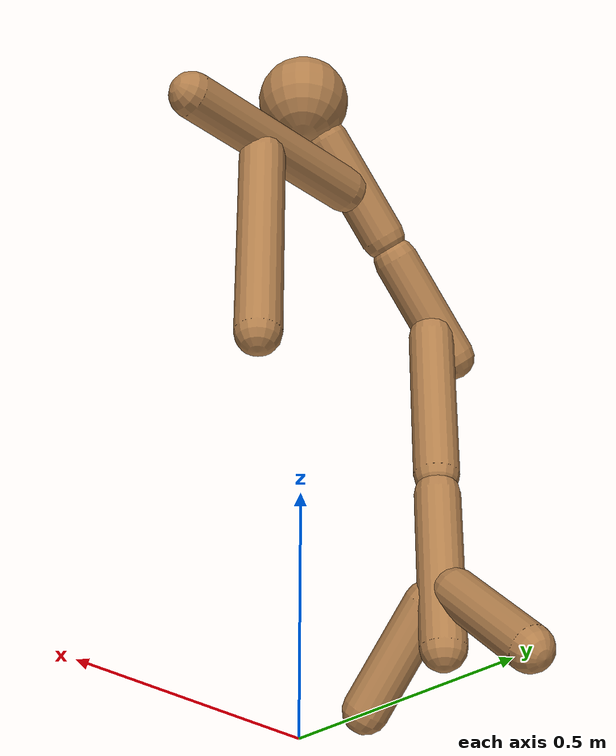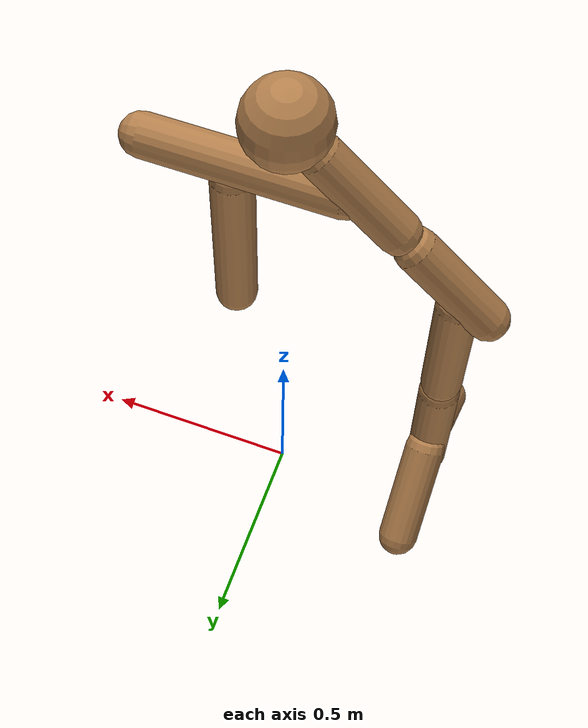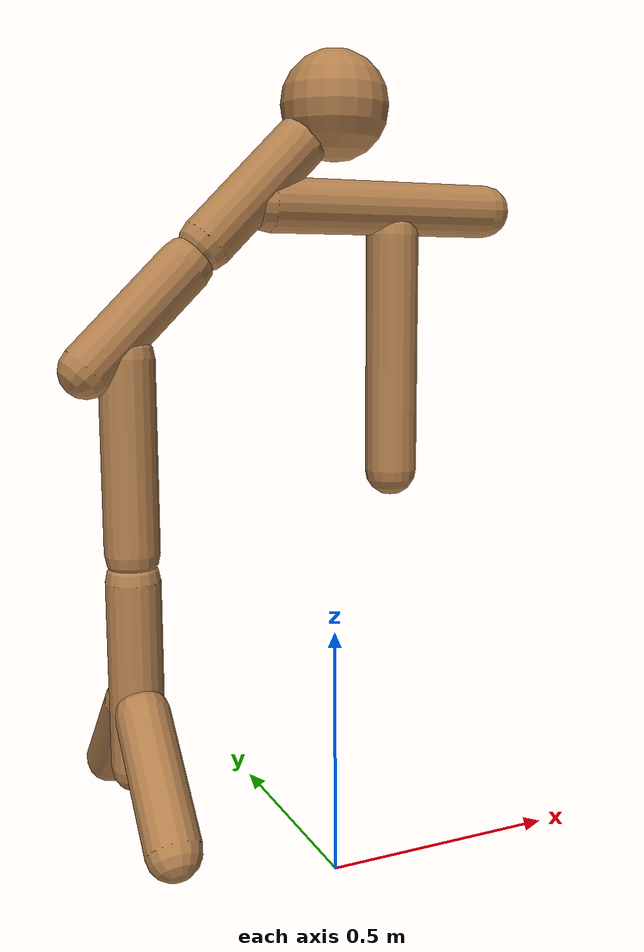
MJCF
<?xml version='1.0' encoding='UTF-8'?>
<!-- Universal Animal Template: unimal -->
<mujoco model="unimal">
  <compiler angle="degree"/>
  <size njmax="2000" nconmax="500"/>
  <option timestep=".005">
    <flag filterparent="disable"/>
  </option>
  <!-- Common defaults to make search space tractable -->
  <default>
    <!-- Define motor defaults -->
    <motor ctrlrange="-1 1" ctrllimited="true"/>
    <!-- Define joint defaults -->
    <default class="normal_joint">
      <joint type="hinge" damping="1" stiffness="1" armature="1" limited="true" range="-120 120" solimplimit="0 0.99 0.01"/>
    </default>
    <default class="walker_joint">
      <joint type="hinge" damping="0.2" stiffness="1" armature=".01" limited="true" range="-120 120" solimplimit="0 0.99 0.01"/>
    </default>
    <default class="stiff_joint">
      <joint type="hinge" damping="5" stiffness="10" armature=".01" limited="true" solimplimit="0 0.99 0.01"/>
    </default>
    <default class="free">
      <joint limited="false" damping="0" armature="0" stiffness="0"/>
    </default>
    <default class="growth_site">
      <site size="1e-6 1e-6 1e-6"/>
    </default>
    <default class="torso_growth_site">
      <site size="1e-6 1e-6 1e-6"/>
    </default>
    <default class="mirror_growth_site">
      <site size="1e-6 1e-6 1e-6"/>
    </default>
    <default class="btm_pos_site">
      <site size="1e-6 1e-6 1e-6"/>
    </default>
    <default class="box_face_site">
      <site size="1e-6 1e-6 1e-6"/>
    </default>
    <default class="imu_vel">
      <site type="box" size="0.05" rgba="1 0 0 0"/>
    </default>
    <default class="touch_site">
      <site group="3" rgba="0 0 1 .3"/>
    </default>
    <default class="food_site">
      <site material="food" size="0.15"/>
    </default>
    <!-- Define geom defaults -->
    <geom type="capsule" condim="3" friction="0.7 0.1 0.1" material="self"/>
  </default>
  <worldbody>
    <light diffuse="1 1 1" directional="true" exponent="1" pos="0 0 8" specular="0.1 0.1 0.1" dir="0 0 -1"/>
    <!-- Programatically generated xml goes here -->
    <body name="torso/0" pos="0 0 1.5">
      <joint name="root" type="free" class="free"/>
      <site name="root" class="imu_vel"/>
      <geom name="torso/0" type="sphere" size="0.1" condim="3" density="800"/>
      <camera name="side" pos="0 -7 2" xyaxes="1 0 0 0 1 2" mode="trackcom"/>
      <site name="torso/0" class="growth_site" pos="0 0 0"/>
      <site name="torso/btm_pos/0" class="btm_pos_site" pos="0 0 -0.1"/>
      <site name="torso/touch/0" class="touch_site" size="0.11"/>
      <site name="torso/horizontal_y/0" class="torso_growth_site" pos="-0.1 0 0"/>
      <body name="limb/0" pos="-0.07 0.0 -0.07">
        <joint name="limbx/0" type="hinge" class="normal_joint" range="-45 45" pos="0.04 0.0 0.04" axis="0.7071 0.0 -0.7071"/>
        <joint name="limby/0" type="hinge" class="normal_joint" range="-30 30" pos="0.04 0.0 0.04" axis="0.0 1.0 0.0"/>
        <geom name="limb/0" type="capsule" fromto="0.0 0.0 0.0 -0.18 0.0 -0.18" size="0.05" density="500"/>
        <site name="limb/mid/0" class="growth_site" pos="-0.11 0.0 -0.11"/>
        <site name="limb/btm/0" class="growth_site" pos="-0.18 0.0 -0.18"/>
        <site name="limb/btm_pos/0" class="btm_pos_site" pos="-0.18 0.0 -0.18"/>
        <site name="limb/touch/0" class="touch_site" size="0.060000000000000005" fromto="0.0 0.0 0.0 -0.18 0.0 -0.18" type="capsule"/>
        <body name="limb/14" pos="-0.22 0.0 -0.22">
          <joint name="limbx/14" type="hinge" class="normal_joint" range="0 90" pos="0.04 0.0 0.04" axis="0.7071 0.0 -0.7071"/>
          <geom name="limb/14" type="capsule" fromto="0.0 0.0 0.0 -0.18 0.0 -0.18" size="0.05" density="500"/>
          <site name="limb/mid/14" class="growth_site" pos="-0.11 0.0 -0.11"/>
          <site name="limb/btm/14" class="growth_site" pos="-0.18 0.0 -0.18"/>
          <site name="limb/btm_pos/14" class="btm_pos_site" pos="-0.18 0.0 -0.18"/>
          <site name="limb/touch/14" class="touch_site" size="0.060000000000000005" fromto="0.0 0.0 0.0 -0.18 0.0 -0.18" type="capsule"/>
          <body name="limb/25" pos="-0.11 0.0 -0.16">
            <joint name="limby/25" type="hinge" class="normal_joint" range="-60 60" pos="0.0 0.0 0.05" axis="0.0 1.0 0.0"/>
            <geom name="limb/25" type="capsule" fromto="0.0 0.0 0.0 0.0 0.0 -0.35" size="0.05" density="500"/>
            <site name="limb/mid/25" class="growth_site" pos="0.0 0.0 -0.2"/>
            <site name="limb/btm/25" class="growth_site" pos="0.0 0.0 -0.35"/>
            <site name="limb/btm_pos/25" class="btm_pos_site" pos="0.0 0.0 -0.4"/>
            <site name="limb/touch/25" class="touch_site" size="0.060000000000000005" fromto="0.0 0.0 0.0 0.0 0.0 -0.35" type="capsule"/>
            <body name="limb/28" pos="0.0 0.0 -0.39999999999999997">
              <joint name="limby/28" type="hinge" class="normal_joint" range="-45 0" pos="0.0 0.0 0.05" axis="0.0 1.0 0.0"/>
              <geom name="limb/28" type="capsule" fromto="0.0 0.0 0.0 0.0 0.0 -0.35" size="0.05" density="500"/>
              <site name="limb/mid/28" class="growth_site" pos="0.0 0.0 -0.2"/>
              <site name="limb/btm/28" class="growth_site" pos="0.0 0.0 -0.35"/>
              <site name="limb/btm_pos/28" class="btm_pos_site" pos="0.0 0.0 -0.4"/>
              <site name="limb/touch/28" class="touch_site" size="0.060000000000000005" fromto="0.0 0.0 0.0 0.0 0.0 -0.35" type="capsule"/>
              <body name="limb/30" pos="0.0 0.04 -0.24000000000000002">
                <joint name="limby/30" type="hinge" class="normal_joint" range="-30 0" pos="0.0 -0.04 0.04" axis="0.0 0.7071 0.7071"/>
                <geom name="limb/30" type="capsule" fromto="0.0 0.0 0.0 0.0 0.18 -0.18" size="0.05" density="500"/>
                <site name="limb/mid/30" class="mirror_growth_site" pos="0.0 0.11 -0.11"/>
                <site name="limb/btm/30" class="mirror_growth_site" pos="0.0 0.18 -0.18"/>
                <site name="limb/btm_pos/30" class="btm_pos_site" pos="0.0 0.21 -0.21"/>
                <site name="limb/touch/30" class="touch_site" size="0.060000000000000005" fromto="0.0 0.0 0.0 0.0 0.18 -0.18" type="capsule"/>
              </body>
              <body name="limb/31" pos="0.0 -0.04 -0.24000000000000002">
                <joint name="limby/31" type="hinge" class="normal_joint" range="-30 0" pos="0.0 0.04 0.04" axis="-0.0 0.7071 -0.7071"/>
                <geom name="limb/31" type="capsule" fromto="0.0 0.0 0.0 0.0 -0.18 -0.18" size="0.05" density="500"/>
                <site name="limb/mid/31" class="mirror_growth_site" pos="0.0 -0.11 -0.11"/>
                <site name="limb/btm/31" class="mirror_growth_site" pos="0.0 -0.18 -0.18"/>
                <site name="limb/btm_pos/31" class="btm_pos_site" pos="0.0 -0.21 -0.21"/>
                <site name="limb/touch/31" class="touch_site" size="0.060000000000000005" fromto="0.0 0.0 0.0 0.0 -0.18 -0.18" type="capsule"/>
              </body>
            </body>
          </body>
        </body>
        <body name="limb/23" pos="-0.06 0.0 -0.11">
          <joint name="limbx/23" type="hinge" class="normal_joint" range="-60 60" pos="-0.05 0.0 0.0" axis="0.0 0.0 1.0"/>
          <joint name="limby/23" type="hinge" class="normal_joint" range="-60 30" pos="-0.05 0.0 0.0" axis="-0.0 1.0 0.0"/>
          <geom name="limb/23" type="capsule" fromto="0.0 0.0 0.0 0.45 0.0 0.0" size="0.05" density="500"/>
          <site name="limb/mid/23" class="growth_site" pos="0.25 0.0 0.0"/>
          <site name="limb/btm/23" class="growth_site" pos="0.45 0.0 0.0"/>
          <site name="limb/btm_pos/23" class="btm_pos_site" pos="0.45 0.0 0.0"/>
          <site name="limb/touch/23" class="touch_site" size="0.060000000000000005" fromto="0.0 0.0 0.0 0.45 0.0 0.0" type="capsule"/>
          <body name="limb/29" pos="0.25 0.0 -0.05">
            <joint name="limby/29" type="hinge" class="normal_joint" range="-30 30" pos="0.0 0.0 0.05" axis="0.0 1.0 0.0"/>
            <geom name="limb/29" type="capsule" fromto="0.0 0.0 0.0 0.0 0.0 -0.45" size="0.05" density="500"/>
            <site name="limb/mid/29" class="growth_site" pos="0.0 0.0 -0.25"/>
            <site name="limb/btm/29" class="growth_site" pos="0.0 0.0 -0.45"/>
            <site name="limb/btm_pos/29" class="btm_pos_site" pos="0.0 0.0 -0.5"/>
            <site name="limb/touch/29" class="touch_site" size="0.060000000000000005" fromto="0.0 0.0 0.0 0.0 0.0 -0.45" type="capsule"/>
          </body>
        </body>
      </body>
    </body>
  </worldbody>
  <actuator>
    <motor joint="limbx/0" gear="150" name="limbx/0"/>
    <motor joint="limby/0" gear="250" name="limby/0"/>
    <motor joint="limbx/14" gear="150" name="limbx/14"/>
    <motor joint="limby/25" gear="300" name="limby/25"/>
    <motor joint="limby/28" gear="300" name="limby/28"/>
    <motor joint="limby/30" gear="300" name="limby/30"/>
    <motor joint="limby/31" gear="300" name="limby/31"/>
    <motor joint="limbx/23" gear="300" name="limbx/23"/>
    <motor joint="limby/23" gear="150" name="limby/23"/>
    <motor joint="limby/29" gear="150" name="limby/29"/>
  </actuator>
  <sensor>
    <accelerometer name="torso_accel" site="root"/>
    <gyro name="torso_gyro" site="root"/>
    <velocimeter name="torso_vel" site="root"/>
    <subtreeangmom name="unimal_am" body="torso/0"/>
    <touch name="torso/0" site="torso/touch/0"/>
    <touch name="limb/0" site="limb/touch/0"/>
    <touch name="limb/14" site="limb/touch/14"/>
    <touch name="limb/25" site="limb/touch/25"/>
    <touch name="limb/28" site="limb/touch/28"/>
    <touch name="limb/30" site="limb/touch/30"/>
    <touch name="limb/31" site="limb/touch/31"/>
    <touch name="limb/23" site="limb/touch/23"/>
    <touch name="limb/29" site="limb/touch/29"/>
  </sensor>
  <!-- Add hfield assets -->
  <asset/>
  <!-- List of contacts to exclude -->
  <contact>
    <exclude name="limb/30:limb/31" body1="limb/30" body2="limb/31"/>
  </contact>
  <!-- Define material, texture etc -->
  <asset>
    <material name="grid" texture="grid" texrepeat="1 1" texuniform="true" reflectance="0.1"/>
    <material name="hfield" texture="hfield" texrepeat="1 1" texuniform="true" reflectance="0.1"/>
    <material name="wall" texture="wall" texrepeat="1 1" texuniform="true" reflectance=".5"/>
    <material name="platform" texture="platform" texrepeat="1 1" texuniform="true" reflectance=".5"/>
    <material name="boundary" texture="boundary" texrepeat="1 1" texuniform="true" reflectance=".5"/>
    <material name="jump" texture="jump" texrepeat="1 1" texuniform="true" reflectance=".5"/>
    <material name="goal" rgba="1 0 0 1"/>
    <material name="food" rgba="0 0 1 1" emission="1"/>
    <material name="init_position" rgba="0 1 0 0.7"/>
    <material name="self" rgba=".7 .5 .3 1"/>
    <material name="self_invisible" rgba=".7 .5 .3 0"/>
    <material name="self_default" rgba=".7 .5 .3 1"/>
    <material name="self_highlight" rgba="0 .5 .3 1"/>
    <material name="effector" rgba=".7 .4 .2 1"/>
    <material name="effector_default" rgba=".7 .4 .2 1"/>
    <material name="effector_highlight" rgba="0 .5 .3 1"/>
    <material name="decoration" rgba=".3 .5 .7 1"/>
    <material name="eye" rgba="0 .2 1 1"/>
    <material name="target" rgba=".6 .3 .3 1"/>
    <material name="target_default" rgba=".6 .3 .3 1"/>
    <material name="target_highlight" rgba=".6 .3 .3 .4"/>
    <material name="site" rgba=".5 .5 .5 .3"/>
    <material name="ball" texture="ball"/>
  </asset>
  <asset>
    <texture name="grid" type="2d" builtin="checker" rgb1="0.4 0.4 0.4" rgb2="0.4 0.4 0.4" width="300" height="300" mark="edge" markrgb="0.2 0.2 0.2"/>
    <texture name="hfield" type="2d" builtin="checker" rgb1="0.4 0.4 0.4" rgb2="0.4 0.4 0.4" width="300" height="300" mark="edge" markrgb="0.2 0.2 0.2"/>
    <texture name="wall" type="2d" builtin="flat" rgb1="0.9 0.7 0" rgb2="0.9 0.7 0" width="300" height="300"/>
    <texture name="platform" type="2d" builtin="flat" rgb1="0.3 0 0.8" rgb2="0.3 0 0.8" width="300" height="300"/>
    <texture name="boundary" type="2d" builtin="flat" rgb1="0.3 0.3 0.3" rgb2="0.3 0.3 0.3" width="300" height="300"/>
    <texture name="jump" type="2d" builtin="flat" rgb1="0.3 0.3 0.3" rgb2="0.3 0.3 0.3" width="300" height="300"/>
    <texture name="skybox" type="skybox" builtin="gradient" rgb1="1 1 1" rgb2="0.6 0.6 0.6" width="800" height="800"/>
    <texture name="ball" builtin="checker" mark="cross" width="151" height="151" rgb1="0.1 0.1 0.1" rgb2="0.9 0.9 0.9" markrgb="1 1 1"/>
  </asset>
  <visual>
    <headlight ambient="0.6 0.6 0.6" diffuse="0.3 0.3 0.3" specular="0 0 0"/>
    <map znear=".01" shadowclip="0.5"/>
    <quality shadowsize="16384"/>
  </visual>
</mujoco>
